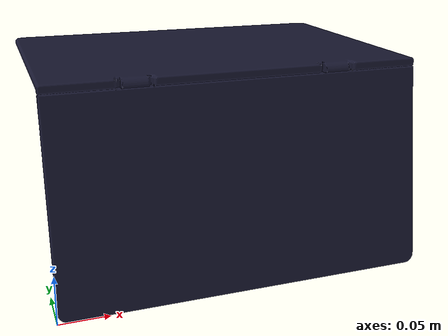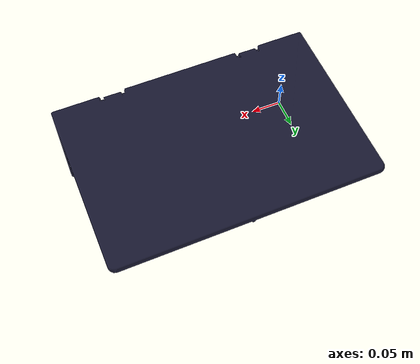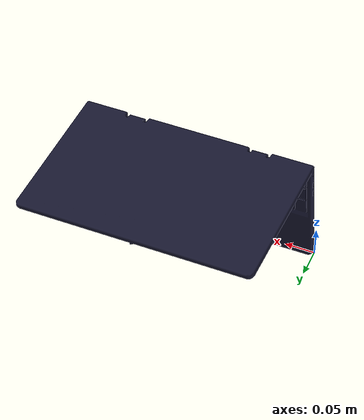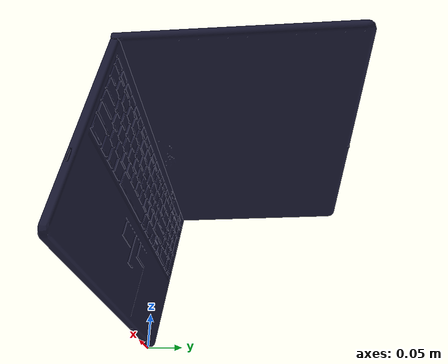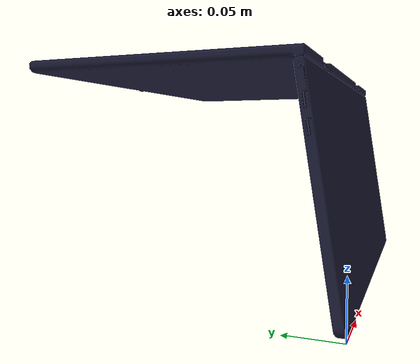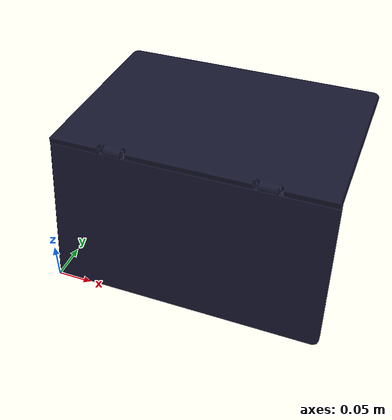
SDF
<?xml version="1.0"?>

<sdf version="1.6">
<model name="Laptop">
  <static>1</static>
    <link name="link">
      <inertial>
        <pose>0.0 0.0 0.0 0.0 0.0 0.0</pose>
        <mass>1</mass>
        <inertia>
          <ixx>0.0</ixx>
          <ixy>0.0</ixy>
          <ixz>0.0</ixz>
          <iyy>0.0</iyy>
          <iyz>0.0</iyz>
          <izz>0.0</izz>
        </inertia>
      </inertial>
      <collision name="collision">
        <pose>0.0 0.0 0.0 0.0 0.0 0.0</pose>
        <geometry>
          <mesh>
				  	<uri>model://Laptop/meshes/laptop.stl</uri>
				  	<scale>0.001 0.001 0.001</scale>
				  </mesh>
        </geometry>
      </collision>
      <visual name="visual">
        <pose>0.0 0.0 0.0 0.0 0.0 0.0</pose>
        <material>
          <ambient>0.1 0.1 0.1 1</ambient>
          <diffuse>0.1 0.1 0.2 1</diffuse>
          <specular>0 0 0 0</specular>
          <emissive>0 0 0 1</emissive>
        </material>
        <geometry>
          <mesh>
				  	<uri>model://Laptop/meshes/laptop.stl</uri>
				  	<scale>0.001 0.001 0.001</scale>
				  </mesh>
        </geometry>
      </visual>
    </link>
  </model>
 </sdf>
